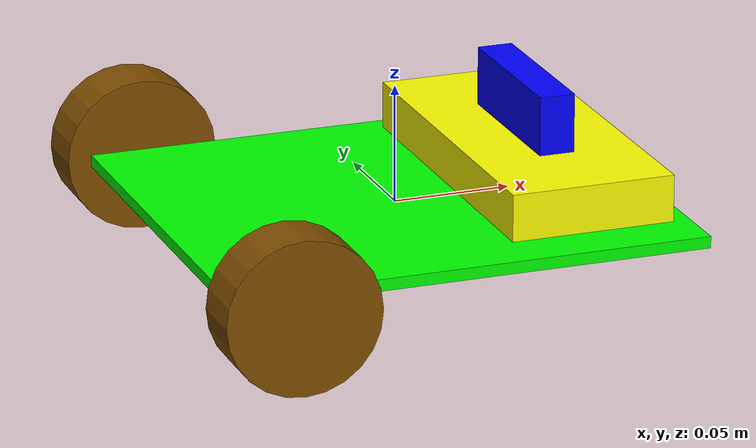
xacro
<?xml version="1.0"?>

<robot xmlns:xacro="http://www.ros.org/wiki/xacro" name="ejison">

    <xacro:include filename="$(find ejison)/model/parameters.xacro" />

    <xacro:include filename="$(find ejison)/model/robot_core.xacro" />

    <xacro:include filename="$(find ejison)/model/ros2_control.xacro" />

    <xacro:include filename="$(find ejison)/model/gazebo.xacro" />

</robot>

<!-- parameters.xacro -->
<robot xmlns:xacro="http://www.ros.org/wiki/xacro">

    <!-- Colors -->
    <material name="green">
        <color rgba="0 1 0 1" />
    </material>

    <material name="blue">
        <color rgba="0 0 1 1" />
    </material>

    <material name="white">
        <color rgba="1 1 1 1" />
    </material>

    <material name="brown">
        <color rgba="0.5 0.3 0 1" />
    </material>

    <material name="yellow">
        <color rgba="1 1 0 1" />
    </material>

    <!-- Default Origin -->
    <xacro:macro name="default_origin">
        <origin xyz="0 0 0" rpy="0 0 0" />
    </xacro:macro>

    <!-- Common Material -->
    <xacro:property name="density" value="1200" />

    <!-- Base Link -->
    <xacro:property name="body_length" value="0.205" />
    <xacro:property name="body_breadth" value="0.18" />
    <xacro:property name="body_height" value="0.005" />
    <xacro:property name="body_mass" value="${density*body_length*body_breadth*body_height}" />

    <!-- Wheel -->
    <xacro:property name="wheel_radius" value="0.0325" />
    <xacro:property name="wheel_length" value="0.025" />
    <xacro:property name="wheel_mass" value="${density*pi*wheel_radius*wheel_radius*wheel_length}" />

    <!-- Caster Wheel -->
    <xacro:property name="caster_wheel_radius" value="0.01625" />
    <xacro:property name="caster_wheel_mass"
        value="${(4.0/3.0)*pi*caster_wheel_radius*caster_wheel_radius*caster_wheel_radius}" />

    <!-- Battery -->
    <xacro:property name="battery_length" value="0.15" />
    <xacro:property name="battery_breadth" value="0.07" />
    <xacro:property name="battery_height" value="0.02" />
    <xacro:property name="battery_mass" value="0.25" />

    <!-- Camera -->
    <xacro:property name="camera_length" value="0.07" />
    <xacro:property name="camera_breadth" value="0.015" />
    <xacro:property name="camera_height" value="0.025" />
    <xacro:property name="camera_mass" value="${density*camera_length*camera_breadth*camera_height}" />

    <!-- Camera Lens -->
    <xacro:property name="camera_lens_radius" value="0.009" />
    <xacro:property name="camera_lens_length" value="0.004" />
    <xacro:property name="camera_lens_mass"
        value="${pi*camera_lens_radius*camera_lens_radius*camera_lens_length}" />

</robot>

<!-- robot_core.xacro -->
<robot xmlns:xacro="http://www.ros.org/wiki/xacro">

    <!-- World -->
    <link name="base_footprint" />
    <joint name="base_joint" type="fixed">
        <parent link="base_footprint" />
        <child link="base_link" />
    </joint>

    <!-- Base Link -->
    <link name="base_link">
        <visual>
            <geometry>
                <box size="${body_length} ${body_breadth} ${body_height}" />
            </geometry>
            <xacro:default_origin />
            <material name="green" />
        </visual>
        <collision>
            <geometry>
                <box size="${body_length} ${body_breadth} ${body_height}" />
            </geometry>
            <xacro:default_origin />
        </collision>
        <inertial>
            <mass value="${body_mass}" />
            <xacro:default_origin />
            <inertia
                ixx="${(1.0/12.0)*body_mass*(body_breadth*body_breadth + body_height*body_height)}"
                iyy="${(1.0/12.0)*body_mass*(body_length*body_length + body_height*body_height)}"
                izz="${(1.0/12.0)*body_mass*(body_length*body_length + body_breadth*body_breadth)}"
                ixy="0.0"
                ixz="0.0"
                iyz="0.0" />
        </inertial>
    </link>

    <!-- Wheel Macro -->
    <xacro:macro name="wheel_macro" params="prefix">
        <link name="${prefix}_wheel_link">
            <visual>
                <geometry>
                    <cylinder radius="${wheel_radius}" length="${wheel_length}" />
                </geometry>
                <origin xyz="0 0 0" rpy="1.57 0 0" />
                <material name="brown" />
            </visual>
            <collision>
                <geometry>
                    <cylinder radius="${wheel_radius}" length="${wheel_length}" />
                </geometry>
                <origin xyz="0 0 0" rpy="1.57 0 0" />
            </collision>
            <inertial>
                <xacro:default_origin />
                <mass value="${wheel_mass}" />
                <inertia
                    ixx="${(1.0/12.0)*wheel_mass*(3*wheel_radius*wheel_radius + wheel_length*wheel_length)}"
                    iyy="${(1.0/2.0)*wheel_mass*wheel_radius*wheel_radius}"
                    izz="${(1.0/12.0)*wheel_mass*(3*wheel_radius*wheel_radius + wheel_length*wheel_length)}"
                    ixy="0.0" ixz="0.0" iyz="0.0" />
            </inertial>
        </link>
    </xacro:macro>

    <!-- Left Wheel -->
    <xacro:wheel_macro prefix="left" />

    <!-- Left Wheel Joint -->
    <joint name="base_left_wheel_joint" type="continuous">
        <parent link="base_link" />
        <child link="left_wheel_link" />
        <origin xyz="-0.08 ${0.09+wheel_length/2} 0" rpy="0 0 0" />
        <axis xyz="0 1 0" />
    </joint>

    <!-- Right Wheel -->
    <xacro:wheel_macro prefix="right" />

    <!-- Right Wheel Joint -->
    <joint name="base_right_wheel_joint" type="continuous">
        <parent link="base_link" />
        <child link="right_wheel_link" />
        <origin xyz="-0.08 -${0.09+wheel_length/2} 0" rpy="0 0 0" />
        <axis xyz="0 1 0" />
    </joint>

    <!-- Caster Wheel -->
    <link name="caster_wheel_link">
        <visual>
            <geometry>
                <sphere radius="${caster_wheel_radius}" />
            </geometry>
            <origin xyz="0 0 0" rpy="0 0 0" />
            <material name="brown" />
        </visual>
        <collision>
            <geometry>
                <sphere radius="${caster_wheel_radius}" />
            </geometry>
            <origin xyz="0 0 0" rpy="0 0 0" />
        </collision>
        <inertial>
            <xacro:default_origin />
            <mass value="${caster_wheel_mass}" />
            <inertia
                ixx="${(2.0/5.0)*caster_wheel_mass*caster_wheel_radius*caster_wheel_radius}"
                iyy="${(2.0/5.0)*caster_wheel_mass*caster_wheel_radius*caster_wheel_radius}"
                izz="${(2.0/5.0)*caster_wheel_mass*caster_wheel_radius*caster_wheel_radius}"
                ixy="0.0" ixz="0.0" iyz="0.0" />
        </inertial>
    </link>

    <!-- Caster Wheel Joint -->
    <joint name="base_caster_wheel_joint" type="fixed">
        <parent link="base_link" />
        <child link="caster_wheel_link" />
        <origin xyz="0.08 0 -0.01625" rpy="0 0 0" />
    </joint>

    <!-- Battery -->
    <link name="battery_link">
        <visual>
            <geometry>
                <box size="${battery_length} ${battery_breadth} ${battery_height}" />
            </geometry>
            <origin xyz="0 0 0" rpy="0 0 1.57" />
            <material name="yellow" />
        </visual>
        <collision>
            <geometry>
                <box size="${battery_length} ${battery_breadth} ${battery_height}" />
            </geometry>
            <origin xyz="0 0 0" rpy="0 0 1.57" />
        </collision>
        <inertial>
            <mass value="${battery_mass}" />
            <xacro:default_origin />
            <inertia
                ixx="${(1.0/12.0)*battery_mass*(battery_breadth*battery_breadth + battery_height*battery_height)}"
                iyy="${(1.0/12.0)*battery_mass*(battery_length*battery_length + battery_height*battery_height)}"
                izz="${(1.0/12.0)*battery_mass*(battery_length*battery_length + battery_breadth*battery_breadth)}"
                ixy="0.0"
                ixz="0.0"
                iyz="0.0" />
        </inertial>
    </link>

    <!-- Battery Joint -->
    <joint name="battery_joint" type="fixed">
        <parent link="base_link" />
        <child link="battery_link" />
        <origin xyz="${body_length/2-0.01-battery_breadth/2} 0 ${body_height+battery_height/2}"
            rpy="0 0 0" />
    </joint>

    <!-- Camera -->
    <link name="camera_link">
        <visual>
            <geometry>
                <box size="${camera_length} ${camera_breadth} ${camera_height}" />
            </geometry>
            <origin xyz="0 0 0" rpy="0 0 1.57" />
            <material name="blue" />
        </visual>
        <collision>
            <geometry>
                <box size="${camera_length} ${camera_breadth} ${camera_height}" />
            </geometry>
            <origin xyz="0 0 0" rpy="0 0 1.57" />
        </collision>
        <inertial>
            <xacro:default_origin />
            <mass value="${camera_mass}" />
            <inertia
                ixx="${(1.0/12.0)*camera_mass*(camera_breadth*camera_breadth + camera_height*camera_height)}"
                iyy="${(1.0/12.0)*camera_mass*(camera_length*camera_length + camera_height*camera_height)}"
                izz="${(1.0/12.0)*camera_mass*(camera_length*camera_length + camera_breadth*camera_breadth)}"
                ixy="0.0" ixz="0.0" iyz="0.0" />
        </inertial>
    </link>

    <!-- Camera Joint -->
    <joint name="base_camera_joint" type="fixed">
        <parent link="battery_link" />
        <child link="camera_link" />
        <origin xyz="0 0 ${battery_height/2+camera_height/2}" rpy="0 0 0" />
    </joint>

    <!-- Camera Lens -->
    <link name="camera_lens_link">
        <visual>
            <geometry>
                <cylinder radius="${camera_lens_radius}" length="${camera_lens_length}" />
            </geometry>
            <origin xyz="0 0 0" rpy="0 1.57 0" />
            <material name="white" />
        </visual>
        <collision>
            <geometry>
                <cylinder radius="${camera_lens_radius}" length="${camera_lens_length}" />
            </geometry>
            <origin xyz="0 0 0" rpy="0 1.57 0" />
        </collision>
        <inertial>
            <xacro:default_origin />
            <mass value="${camera_lens_mass}" />
            <inertia
                ixx="${(1.0/2.0)*camera_lens_mass*camera_lens_radius*camera_lens_radius}"
                iyy="${(1.0/12.0)*camera_lens_mass*(3*camera_lens_radius*camera_lens_radius +
    camera_lens_length*camera_lens_length)}"
                izz="${(1.0/12.0)*camera_lens_mass*(3*camera_lens_radius*camera_lens_radius +
    camera_lens_length*camera_lens_length)}"
                ixy="0.0" ixz="0.0" iyz="0.0" />
        </inertial>
    </link>

    <!-- Camera Lens Joint -->
    <joint name="camera_camera_lens_joint" type="fixed">
        <parent link="camera_link" />
        <child link="camera_lens_link" />
        <origin xyz="0.0075 0 0" rpy="0 0 0" />
    </joint>

</robot>
